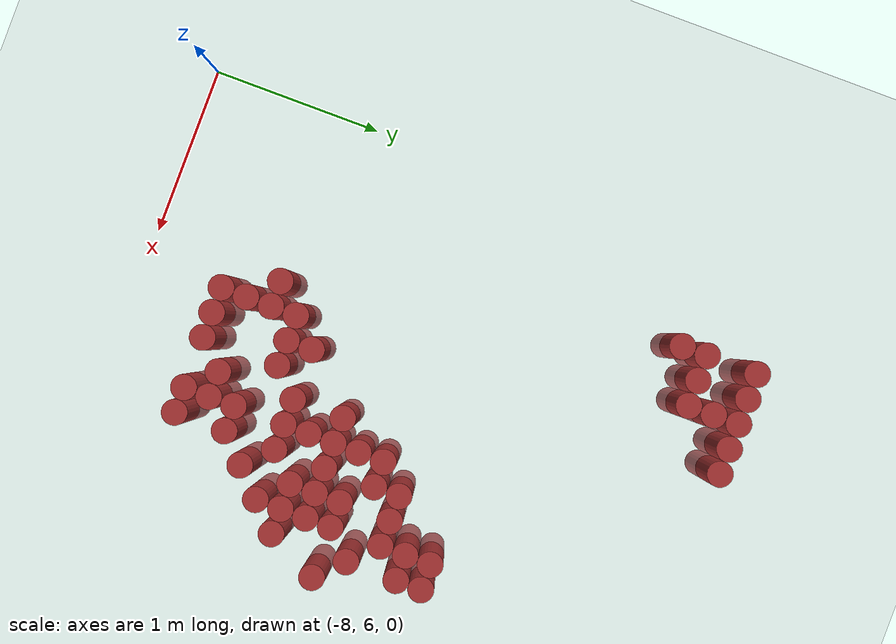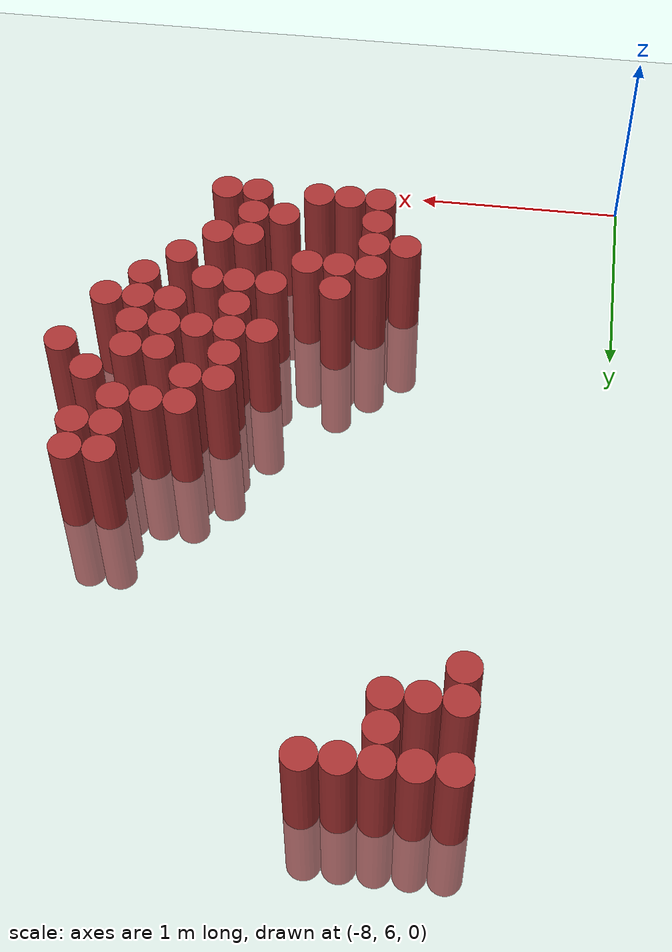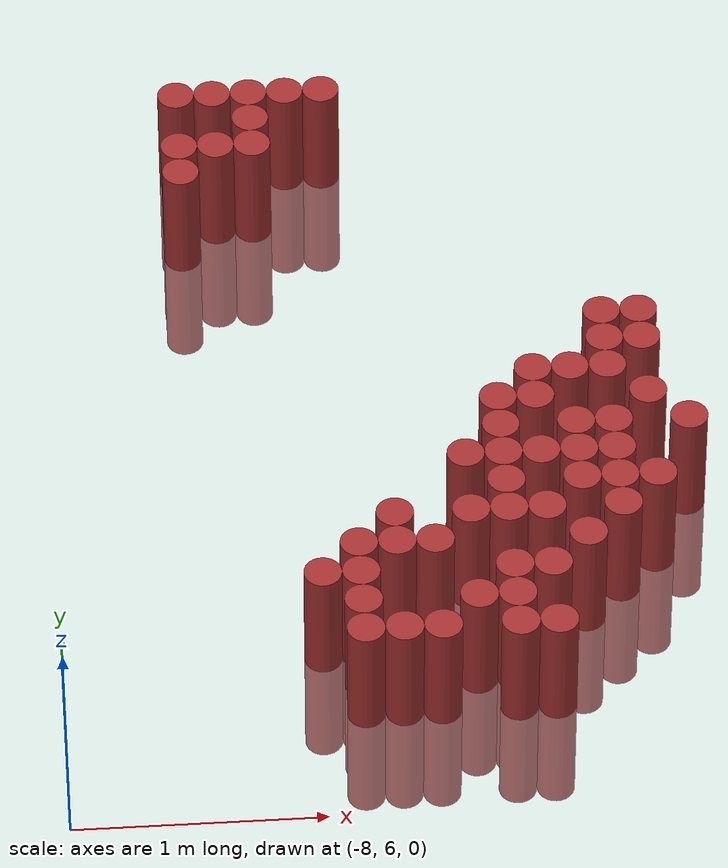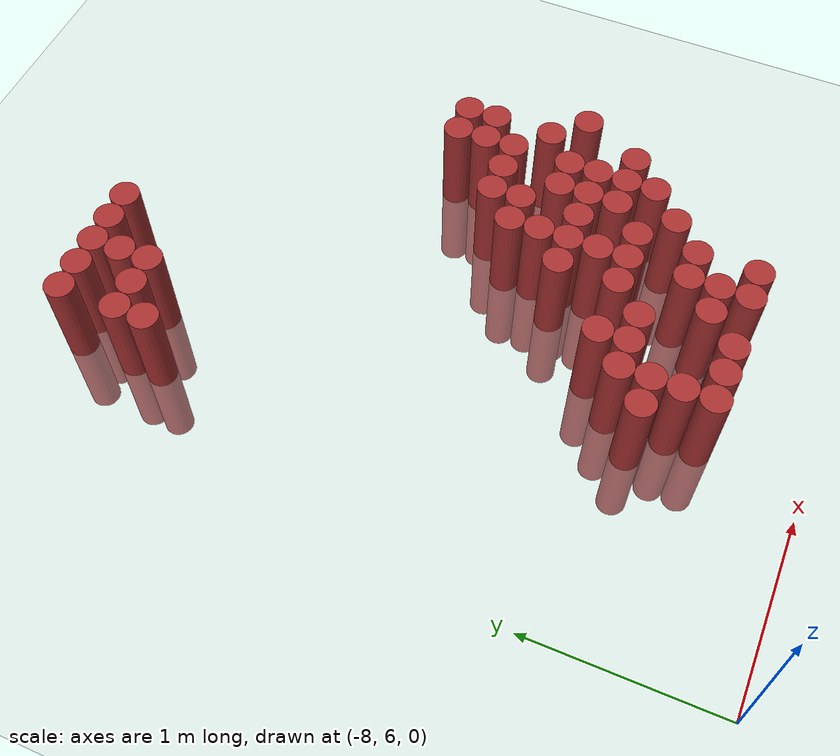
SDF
<sdf version="1.6">
 <world name="default">
  <model name="ground_plane">
   <static>1</static>
   <link name="link">
    <collision name="collision">
     <geometry><plane><normal>0 0 1</normal><size>100 100</size></plane></geometry>
     <surface><friction><ode><mu>100</mu><mu2>50</mu2></ode></friction></surface>
    </collision>
    <visual name="visual">
     <cast_shadows>0</cast_shadows>
     <geometry><plane><normal>0 0 1</normal><size>100 100</size></plane></geometry>
     <material>
      <script><uri>file://media/materials/scripts/gazebo.material</uri><name>Gazebo/Grey</name></script>
     </material>
    </visual>
   </link>
  </model>
  <model name="unit_cylinder_199">
   <static>1</static>
   <pose>-7.425000 9.075000 0.000000 0.000000 0.000000 0.000000</pose>
   <link name="link">
    <inertial>
     <mass>1</mass>
     <inertia><ixx>0.145833</ixx><ixy>0</ixy><ixz>0</ixz><iyy>0.145833</iyy><iyz>0</iyz><izz>0.125</izz></inertia>
    </inertial>
    <collision name="collision">
     <geometry><cylinder><radius>0.075000</radius><length>1</length></cylinder></geometry>
    </collision>
    <visual name="visual">
     <geometry><cylinder><radius>0.075000</radius><length>1</length></cylinder></geometry>
     <material>
      <ambient>0.648000 0.192000 0.192000 1</ambient>
      <diffuse>0.648000 0.192000 0.192000 1</diffuse>
     </material>
     <material>
      <script><name>Gazebo/Grey</name><uri>file://media/materials/scripts/gazebo.material</uri></script>
     </material>
    </visual>
   </link>
  </model>
  <model name="unit_cylinder_200">
   <static>1</static>
   <pose>-7.425000 9.225000 0.000000 0.000000 0.000000 0.000000</pose>
   <link name="link">
    <inertial>
     <mass>1</mass>
     <inertia><ixx>0.145833</ixx><ixy>0</ixy><ixz>0</ixz><iyy>0.145833</iyy><iyz>0</iyz><izz>0.125</izz></inertia>
    </inertial>
    <collision name="collision">
     <geometry><cylinder><radius>0.075000</radius><length>1</length></cylinder></geometry>
    </collision>
    <visual name="visual">
     <geometry><cylinder><radius>0.075000</radius><length>1</length></cylinder></geometry>
     <material>
      <ambient>0.648000 0.192000 0.192000 1</ambient>
      <diffuse>0.648000 0.192000 0.192000 1</diffuse>
     </material>
     <material>
      <script><name>Gazebo/Grey</name><uri>file://media/materials/scripts/gazebo.material</uri></script>
     </material>
    </visual>
   </link>
  </model>
  <model name="unit_cylinder_201">
   <static>1</static>
   <pose>-7.425000 9.525000 0.000000 0.000000 0.000000 0.000000</pose>
   <link name="link">
    <inertial>
     <mass>1</mass>
     <inertia><ixx>0.145833</ixx><ixy>0</ixy><ixz>0</ixz><iyy>0.145833</iyy><iyz>0</iyz><izz>0.125</izz></inertia>
    </inertial>
    <collision name="collision">
     <geometry><cylinder><radius>0.075000</radius><length>1</length></cylinder></geometry>
    </collision>
    <visual name="visual">
     <geometry><cylinder><radius>0.075000</radius><length>1</length></cylinder></geometry>
     <material>
      <ambient>0.648000 0.192000 0.192000 1</ambient>
      <diffuse>0.648000 0.192000 0.192000 1</diffuse>
     </material>
     <material>
      <script><name>Gazebo/Grey</name><uri>file://media/materials/scripts/gazebo.material</uri></script>
     </material>
    </visual>
   </link>
  </model>
  <model name="unit_cylinder_202">
   <static>1</static>
   <pose>-7.275000 9.225000 0.000000 0.000000 0.000000 0.000000</pose>
   <link name="link">
    <inertial>
     <mass>1</mass>
     <inertia><ixx>0.145833</ixx><ixy>0</ixy><ixz>0</ixz><iyy>0.145833</iyy><iyz>0</iyz><izz>0.125</izz></inertia>
    </inertial>
    <collision name="collision">
     <geometry><cylinder><radius>0.075000</radius><length>1</length></cylinder></geometry>
    </collision>
    <visual name="visual">
     <geometry><cylinder><radius>0.075000</radius><length>1</length></cylinder></geometry>
     <material>
      <ambient>0.648000 0.192000 0.192000 1</ambient>
      <diffuse>0.648000 0.192000 0.192000 1</diffuse>
     </material>
     <material>
      <script><name>Gazebo/Grey</name><uri>file://media/materials/scripts/gazebo.material</uri></script>
     </material>
    </visual>
   </link>
  </model>
  <model name="unit_cylinder_203">
   <static>1</static>
   <pose>-7.275000 9.525000 0.000000 0.000000 0.000000 0.000000</pose>
   <link name="link">
    <inertial>
     <mass>1</mass>
     <inertia><ixx>0.145833</ixx><ixy>0</ixy><ixz>0</ixz><iyy>0.145833</iyy><iyz>0</iyz><izz>0.125</izz></inertia>
    </inertial>
    <collision name="collision">
     <geometry><cylinder><radius>0.075000</radius><length>1</length></cylinder></geometry>
    </collision>
    <visual name="visual">
     <geometry><cylinder><radius>0.075000</radius><length>1</length></cylinder></geometry>
     <material>
      <ambient>0.648000 0.192000 0.192000 1</ambient>
      <diffuse>0.648000 0.192000 0.192000 1</diffuse>
     </material>
     <material>
      <script><name>Gazebo/Grey</name><uri>file://media/materials/scripts/gazebo.material</uri></script>
     </material>
    </visual>
   </link>
  </model>
  <model name="unit_cylinder_206">
   <static>1</static>
   <pose>-7.125000 9.225000 0.000000 0.000000 0.000000 0.000000</pose>
   <link name="link">
    <inertial>
     <mass>1</mass>
     <inertia><ixx>0.145833</ixx><ixy>0</ixy><ixz>0</ixz><iyy>0.145833</iyy><iyz>0</iyz><izz>0.125</izz></inertia>
    </inertial>
    <collision name="collision">
     <geometry><cylinder><radius>0.075000</radius><length>1</length></cylinder></geometry>
    </collision>
    <visual name="visual">
     <geometry><cylinder><radius>0.075000</radius><length>1</length></cylinder></geometry>
     <material>
      <ambient>0.648000 0.192000 0.192000 1</ambient>
      <diffuse>0.648000 0.192000 0.192000 1</diffuse>
     </material>
     <material>
      <script><name>Gazebo/Grey</name><uri>file://media/materials/scripts/gazebo.material</uri></script>
     </material>
    </visual>
   </link>
  </model>
  <model name="unit_cylinder_207">
   <static>1</static>
   <pose>-7.125000 9.375000 0.000000 0.000000 0.000000 0.000000</pose>
   <link name="link">
    <inertial>
     <mass>1</mass>
     <inertia><ixx>0.145833</ixx><ixy>0</ixy><ixz>0</ixz><iyy>0.145833</iyy><iyz>0</iyz><izz>0.125</izz></inertia>
    </inertial>
    <collision name="collision">
     <geometry><cylinder><radius>0.075000</radius><length>1</length></cylinder></geometry>
    </collision>
    <visual name="visual">
     <geometry><cylinder><radius>0.075000</radius><length>1</length></cylinder></geometry>
     <material>
      <ambient>0.648000 0.192000 0.192000 1</ambient>
      <diffuse>0.648000 0.192000 0.192000 1</diffuse>
     </material>
     <material>
      <script><name>Gazebo/Grey</name><uri>file://media/materials/scripts/gazebo.material</uri></script>
     </material>
    </visual>
   </link>
  </model>
  <model name="unit_cylinder_208">
   <static>1</static>
   <pose>-7.125000 9.525000 0.000000 0.000000 0.000000 0.000000</pose>
   <link name="link">
    <inertial>
     <mass>1</mass>
     <inertia><ixx>0.145833</ixx><ixy>0</ixy><ixz>0</ixz><iyy>0.145833</iyy><iyz>0</iyz><izz>0.125</izz></inertia>
    </inertial>
    <collision name="collision">
     <geometry><cylinder><radius>0.075000</radius><length>1</length></cylinder></geometry>
    </collision>
    <visual name="visual">
     <geometry><cylinder><radius>0.075000</radius><length>1</length></cylinder></geometry>
     <material>
      <ambient>0.648000 0.192000 0.192000 1</ambient>
      <diffuse>0.648000 0.192000 0.192000 1</diffuse>
     </material>
     <material>
      <script><name>Gazebo/Grey</name><uri>file://media/materials/scripts/gazebo.material</uri></script>
     </material>
    </visual>
   </link>
  </model>
  <model name="unit_cylinder_213">
   <static>1</static>
   <pose>-6.975000 6.825000 0.000000 0.000000 0.000000 0.000000</pose>
   <link name="link">
    <inertial>
     <mass>1</mass>
     <inertia><ixx>0.145833</ixx><ixy>0</ixy><ixz>0</ixz><iyy>0.145833</iyy><iyz>0</iyz><izz>0.125</izz></inertia>
    </inertial>
    <collision name="collision">
     <geometry><cylinder><radius>0.075000</radius><length>1</length></cylinder></geometry>
    </collision>
    <visual name="visual">
     <geometry><cylinder><radius>0.075000</radius><length>1</length></cylinder></geometry>
     <material>
      <ambient>0.648000 0.192000 0.192000 1</ambient>
      <diffuse>0.648000 0.192000 0.192000 1</diffuse>
     </material>
     <material>
      <script><name>Gazebo/Grey</name><uri>file://media/materials/scripts/gazebo.material</uri></script>
     </material>
    </visual>
   </link>
  </model>
  <model name="unit_cylinder_214">
   <static>1</static>
   <pose>-6.975000 9.525000 0.000000 0.000000 0.000000 0.000000</pose>
   <link name="link">
    <inertial>
     <mass>1</mass>
     <inertia><ixx>0.145833</ixx><ixy>0</ixy><ixz>0</ixz><iyy>0.145833</iyy><iyz>0</iyz><izz>0.125</izz></inertia>
    </inertial>
    <collision name="collision">
     <geometry><cylinder><radius>0.075000</radius><length>1</length></cylinder></geometry>
    </collision>
    <visual name="visual">
     <geometry><cylinder><radius>0.075000</radius><length>1</length></cylinder></geometry>
     <material>
      <ambient>0.648000 0.192000 0.192000 1</ambient>
      <diffuse>0.648000 0.192000 0.192000 1</diffuse>
     </material>
     <material>
      <script><name>Gazebo/Grey</name><uri>file://media/materials/scripts/gazebo.material</uri></script>
     </material>
    </visual>
   </link>
  </model>
  <model name="unit_cylinder_217">
   <static>1</static>
   <pose>-6.825000 6.525000 0.000000 0.000000 0.000000 0.000000</pose>
   <link name="link">
    <inertial>
     <mass>1</mass>
     <inertia><ixx>0.145833</ixx><ixy>0</ixy><ixz>0</ixz><iyy>0.145833</iyy><iyz>0</iyz><izz>0.125</izz></inertia>
    </inertial>
    <collision name="collision">
     <geometry><cylinder><radius>0.075000</radius><length>1</length></cylinder></geometry>
    </collision>
    <visual name="visual">
     <geometry><cylinder><radius>0.075000</radius><length>1</length></cylinder></geometry>
     <material>
      <ambient>0.648000 0.192000 0.192000 1</ambient>
      <diffuse>0.648000 0.192000 0.192000 1</diffuse>
     </material>
     <material>
      <script><name>Gazebo/Grey</name><uri>file://media/materials/scripts/gazebo.material</uri></script>
     </material>
    </visual>
   </link>
  </model>
  <model name="unit_cylinder_218">
   <static>1</static>
   <pose>-6.825000 6.675000 0.000000 0.000000 0.000000 0.000000</pose>
   <link name="link">
    <inertial>
     <mass>1</mass>
     <inertia><ixx>0.145833</ixx><ixy>0</ixy><ixz>0</ixz><iyy>0.145833</iyy><iyz>0</iyz><izz>0.125</izz></inertia>
    </inertial>
    <collision name="collision">
     <geometry><cylinder><radius>0.075000</radius><length>1</length></cylinder></geometry>
    </collision>
    <visual name="visual">
     <geometry><cylinder><radius>0.075000</radius><length>1</length></cylinder></geometry>
     <material>
      <ambient>0.648000 0.192000 0.192000 1</ambient>
      <diffuse>0.648000 0.192000 0.192000 1</diffuse>
     </material>
     <material>
      <script><name>Gazebo/Grey</name><uri>file://media/materials/scripts/gazebo.material</uri></script>
     </material>
    </visual>
   </link>
  </model>
  <model name="unit_cylinder_219">
   <static>1</static>
   <pose>-6.825000 6.825000 0.000000 0.000000 0.000000 0.000000</pose>
   <link name="link">
    <inertial>
     <mass>1</mass>
     <inertia><ixx>0.145833</ixx><ixy>0</ixy><ixz>0</ixz><iyy>0.145833</iyy><iyz>0</iyz><izz>0.125</izz></inertia>
    </inertial>
    <collision name="collision">
     <geometry><cylinder><radius>0.075000</radius><length>1</length></cylinder></geometry>
    </collision>
    <visual name="visual">
     <geometry><cylinder><radius>0.075000</radius><length>1</length></cylinder></geometry>
     <material>
      <ambient>0.648000 0.192000 0.192000 1</ambient>
      <diffuse>0.648000 0.192000 0.192000 1</diffuse>
     </material>
     <material>
      <script><name>Gazebo/Grey</name><uri>file://media/materials/scripts/gazebo.material</uri></script>
     </material>
    </visual>
   </link>
  </model>
  <model name="unit_cylinder_220">
   <static>1</static>
   <pose>-6.825000 6.975000 0.000000 0.000000 0.000000 0.000000</pose>
   <link name="link">
    <inertial>
     <mass>1</mass>
     <inertia><ixx>0.145833</ixx><ixy>0</ixy><ixz>0</ixz><iyy>0.145833</iyy><iyz>0</iyz><izz>0.125</izz></inertia>
    </inertial>
    <collision name="collision">
     <geometry><cylinder><radius>0.075000</radius><length>1</length></cylinder></geometry>
    </collision>
    <visual name="visual">
     <geometry><cylinder><radius>0.075000</radius><length>1</length></cylinder></geometry>
     <material>
      <ambient>0.648000 0.192000 0.192000 1</ambient>
      <diffuse>0.648000 0.192000 0.192000 1</diffuse>
     </material>
     <material>
      <script><name>Gazebo/Grey</name><uri>file://media/materials/scripts/gazebo.material</uri></script>
     </material>
    </visual>
   </link>
  </model>
  <model name="unit_cylinder_221">
   <static>1</static>
   <pose>-6.825000 9.525000 0.000000 0.000000 0.000000 0.000000</pose>
   <link name="link">
    <inertial>
     <mass>1</mass>
     <inertia><ixx>0.145833</ixx><ixy>0</ixy><ixz>0</ixz><iyy>0.145833</iyy><iyz>0</iyz><izz>0.125</izz></inertia>
    </inertial>
    <collision name="collision">
     <geometry><cylinder><radius>0.075000</radius><length>1</length></cylinder></geometry>
    </collision>
    <visual name="visual">
     <geometry><cylinder><radius>0.075000</radius><length>1</length></cylinder></geometry>
     <material>
      <ambient>0.648000 0.192000 0.192000 1</ambient>
      <diffuse>0.648000 0.192000 0.192000 1</diffuse>
     </material>
     <material>
      <script><name>Gazebo/Grey</name><uri>file://media/materials/scripts/gazebo.material</uri></script>
     </material>
    </visual>
   </link>
  </model>
  <model name="unit_cylinder_224">
   <static>1</static>
   <pose>-6.675000 6.525000 0.000000 0.000000 0.000000 0.000000</pose>
   <link name="link">
    <inertial>
     <mass>1</mass>
     <inertia><ixx>0.145833</ixx><ixy>0</ixy><ixz>0</ixz><iyy>0.145833</iyy><iyz>0</iyz><izz>0.125</izz></inertia>
    </inertial>
    <collision name="collision">
     <geometry><cylinder><radius>0.075000</radius><length>1</length></cylinder></geometry>
    </collision>
    <visual name="visual">
     <geometry><cylinder><radius>0.075000</radius><length>1</length></cylinder></geometry>
     <material>
      <ambient>0.648000 0.192000 0.192000 1</ambient>
      <diffuse>0.648000 0.192000 0.192000 1</diffuse>
     </material>
     <material>
      <script><name>Gazebo/Grey</name><uri>file://media/materials/scripts/gazebo.material</uri></script>
     </material>
    </visual>
   </link>
  </model>
  <model name="unit_cylinder_225">
   <static>1</static>
   <pose>-6.675000 6.975000 0.000000 0.000000 0.000000 0.000000</pose>
   <link name="link">
    <inertial>
     <mass>1</mass>
     <inertia><ixx>0.145833</ixx><ixy>0</ixy><ixz>0</ixz><iyy>0.145833</iyy><iyz>0</iyz><izz>0.125</izz></inertia>
    </inertial>
    <collision name="collision">
     <geometry><cylinder><radius>0.075000</radius><length>1</length></cylinder></geometry>
    </collision>
    <visual name="visual">
     <geometry><cylinder><radius>0.075000</radius><length>1</length></cylinder></geometry>
     <material>
      <ambient>0.648000 0.192000 0.192000 1</ambient>
      <diffuse>0.648000 0.192000 0.192000 1</diffuse>
     </material>
     <material>
      <script><name>Gazebo/Grey</name><uri>file://media/materials/scripts/gazebo.material</uri></script>
     </material>
    </visual>
   </link>
  </model>
  <model name="unit_cylinder_226">
   <static>1</static>
   <pose>-6.675000 7.125000 0.000000 0.000000 0.000000 0.000000</pose>
   <link name="link">
    <inertial>
     <mass>1</mass>
     <inertia><ixx>0.145833</ixx><ixy>0</ixy><ixz>0</ixz><iyy>0.145833</iyy><iyz>0</iyz><izz>0.125</izz></inertia>
    </inertial>
    <collision name="collision">
     <geometry><cylinder><radius>0.075000</radius><length>1</length></cylinder></geometry>
    </collision>
    <visual name="visual">
     <geometry><cylinder><radius>0.075000</radius><length>1</length></cylinder></geometry>
     <material>
      <ambient>0.648000 0.192000 0.192000 1</ambient>
      <diffuse>0.648000 0.192000 0.192000 1</diffuse>
     </material>
     <material>
      <script><name>Gazebo/Grey</name><uri>file://media/materials/scripts/gazebo.material</uri></script>
     </material>
    </visual>
   </link>
  </model>
  <model name="unit_cylinder_230">
   <static>1</static>
   <pose>-6.525000 6.525000 0.000000 0.000000 0.000000 0.000000</pose>
   <link name="link">
    <inertial>
     <mass>1</mass>
     <inertia><ixx>0.145833</ixx><ixy>0</ixy><ixz>0</ixz><iyy>0.145833</iyy><iyz>0</iyz><izz>0.125</izz></inertia>
    </inertial>
    <collision name="collision">
     <geometry><cylinder><radius>0.075000</radius><length>1</length></cylinder></geometry>
    </collision>
    <visual name="visual">
     <geometry><cylinder><radius>0.075000</radius><length>1</length></cylinder></geometry>
     <material>
      <ambient>0.648000 0.192000 0.192000 1</ambient>
      <diffuse>0.648000 0.192000 0.192000 1</diffuse>
     </material>
     <material>
      <script><name>Gazebo/Grey</name><uri>file://media/materials/scripts/gazebo.material</uri></script>
     </material>
    </visual>
   </link>
  </model>
  <model name="unit_cylinder_231">
   <static>1</static>
   <pose>-6.525000 6.975000 0.000000 0.000000 0.000000 0.000000</pose>
   <link name="link">
    <inertial>
     <mass>1</mass>
     <inertia><ixx>0.145833</ixx><ixy>0</ixy><ixz>0</ixz><iyy>0.145833</iyy><iyz>0</iyz><izz>0.125</izz></inertia>
    </inertial>
    <collision name="collision">
     <geometry><cylinder><radius>0.075000</radius><length>1</length></cylinder></geometry>
    </collision>
    <visual name="visual">
     <geometry><cylinder><radius>0.075000</radius><length>1</length></cylinder></geometry>
     <material>
      <ambient>0.648000 0.192000 0.192000 1</ambient>
      <diffuse>0.648000 0.192000 0.192000 1</diffuse>
     </material>
     <material>
      <script><name>Gazebo/Grey</name><uri>file://media/materials/scripts/gazebo.material</uri></script>
     </material>
    </visual>
   </link>
  </model>
  <model name="unit_cylinder_235">
   <static>1</static>
   <pose>-6.375000 6.675000 0.000000 0.000000 0.000000 0.000000</pose>
   <link name="link">
    <inertial>
     <mass>1</mass>
     <inertia><ixx>0.145833</ixx><ixy>0</ixy><ixz>0</ixz><iyy>0.145833</iyy><iyz>0</iyz><izz>0.125</izz></inertia>
    </inertial>
    <collision name="collision">
     <geometry><cylinder><radius>0.075000</radius><length>1</length></cylinder></geometry>
    </collision>
    <visual name="visual">
     <geometry><cylinder><radius>0.075000</radius><length>1</length></cylinder></geometry>
     <material>
      <ambient>0.648000 0.192000 0.192000 1</ambient>
      <diffuse>0.648000 0.192000 0.192000 1</diffuse>
     </material>
     <material>
      <script><name>Gazebo/Grey</name><uri>file://media/materials/scripts/gazebo.material</uri></script>
     </material>
    </visual>
   </link>
  </model>
  <model name="unit_cylinder_236">
   <static>1</static>
   <pose>-6.375000 7.125000 0.000000 0.000000 0.000000 0.000000</pose>
   <link name="link">
    <inertial>
     <mass>1</mass>
     <inertia><ixx>0.145833</ixx><ixy>0</ixy><ixz>0</ixz><iyy>0.145833</iyy><iyz>0</iyz><izz>0.125</izz></inertia>
    </inertial>
    <collision name="collision">
     <geometry><cylinder><radius>0.075000</radius><length>1</length></cylinder></geometry>
    </collision>
    <visual name="visual">
     <geometry><cylinder><radius>0.075000</radius><length>1</length></cylinder></geometry>
     <material>
      <ambient>0.648000 0.192000 0.192000 1</ambient>
      <diffuse>0.648000 0.192000 0.192000 1</diffuse>
     </material>
     <material>
      <script><name>Gazebo/Grey</name><uri>file://media/materials/scripts/gazebo.material</uri></script>
     </material>
    </visual>
   </link>
  </model>
  <model name="unit_cylinder_237">
   <static>1</static>
   <pose>-6.375000 7.425000 0.000000 0.000000 0.000000 0.000000</pose>
   <link name="link">
    <inertial>
     <mass>1</mass>
     <inertia><ixx>0.145833</ixx><ixy>0</ixy><ixz>0</ixz><iyy>0.145833</iyy><iyz>0</iyz><izz>0.125</izz></inertia>
    </inertial>
    <collision name="collision">
     <geometry><cylinder><radius>0.075000</radius><length>1</length></cylinder></geometry>
    </collision>
    <visual name="visual">
     <geometry><cylinder><radius>0.075000</radius><length>1</length></cylinder></geometry>
     <material>
      <ambient>0.648000 0.192000 0.192000 1</ambient>
      <diffuse>0.648000 0.192000 0.192000 1</diffuse>
     </material>
     <material>
      <script><name>Gazebo/Grey</name><uri>file://media/materials/scripts/gazebo.material</uri></script>
     </material>
    </visual>
   </link>
  </model>
  <model name="unit_cylinder_239">
   <static>1</static>
   <pose>-6.225000 6.525000 0.000000 0.000000 0.000000 0.000000</pose>
   <link name="link">
    <inertial>
     <mass>1</mass>
     <inertia><ixx>0.145833</ixx><ixy>0</ixy><ixz>0</ixz><iyy>0.145833</iyy><iyz>0</iyz><izz>0.125</izz></inertia>
    </inertial>
    <collision name="collision">
     <geometry><cylinder><radius>0.075000</radius><length>1</length></cylinder></geometry>
    </collision>
    <visual name="visual">
     <geometry><cylinder><radius>0.075000</radius><length>1</length></cylinder></geometry>
     <material>
      <ambient>0.648000 0.192000 0.192000 1</ambient>
      <diffuse>0.648000 0.192000 0.192000 1</diffuse>
     </material>
     <material>
      <script><name>Gazebo/Grey</name><uri>file://media/materials/scripts/gazebo.material</uri></script>
     </material>
    </visual>
   </link>
  </model>
  <model name="unit_cylinder_240">
   <static>1</static>
   <pose>-6.225000 6.675000 0.000000 0.000000 0.000000 0.000000</pose>
   <link name="link">
    <inertial>
     <mass>1</mass>
     <inertia><ixx>0.145833</ixx><ixy>0</ixy><ixz>0</ixz><iyy>0.145833</iyy><iyz>0</iyz><izz>0.125</izz></inertia>
    </inertial>
    <collision name="collision">
     <geometry><cylinder><radius>0.075000</radius><length>1</length></cylinder></geometry>
    </collision>
    <visual name="visual">
     <geometry><cylinder><radius>0.075000</radius><length>1</length></cylinder></geometry>
     <material>
      <ambient>0.648000 0.192000 0.192000 1</ambient>
      <diffuse>0.648000 0.192000 0.192000 1</diffuse>
     </material>
     <material>
      <script><name>Gazebo/Grey</name><uri>file://media/materials/scripts/gazebo.material</uri></script>
     </material>
    </visual>
   </link>
  </model>
  <model name="unit_cylinder_241">
   <static>1</static>
   <pose>-6.225000 6.825000 0.000000 0.000000 0.000000 0.000000</pose>
   <link name="link">
    <inertial>
     <mass>1</mass>
     <inertia><ixx>0.145833</ixx><ixy>0</ixy><ixz>0</ixz><iyy>0.145833</iyy><iyz>0</iyz><izz>0.125</izz></inertia>
    </inertial>
    <collision name="collision">
     <geometry><cylinder><radius>0.075000</radius><length>1</length></cylinder></geometry>
    </collision>
    <visual name="visual">
     <geometry><cylinder><radius>0.075000</radius><length>1</length></cylinder></geometry>
     <material>
      <ambient>0.648000 0.192000 0.192000 1</ambient>
      <diffuse>0.648000 0.192000 0.192000 1</diffuse>
     </material>
     <material>
      <script><name>Gazebo/Grey</name><uri>file://media/materials/scripts/gazebo.material</uri></script>
     </material>
    </visual>
   </link>
  </model>
  <model name="unit_cylinder_242">
   <static>1</static>
   <pose>-6.225000 7.125000 0.000000 0.000000 0.000000 0.000000</pose>
   <link name="link">
    <inertial>
     <mass>1</mass>
     <inertia><ixx>0.145833</ixx><ixy>0</ixy><ixz>0</ixz><iyy>0.145833</iyy><iyz>0</iyz><izz>0.125</izz></inertia>
    </inertial>
    <collision name="collision">
     <geometry><cylinder><radius>0.075000</radius><length>1</length></cylinder></geometry>
    </collision>
    <visual name="visual">
     <geometry><cylinder><radius>0.075000</radius><length>1</length></cylinder></geometry>
     <material>
      <ambient>0.648000 0.192000 0.192000 1</ambient>
      <diffuse>0.648000 0.192000 0.192000 1</diffuse>
     </material>
     <material>
      <script><name>Gazebo/Grey</name><uri>file://media/materials/scripts/gazebo.material</uri></script>
     </material>
    </visual>
   </link>
  </model>
  <model name="unit_cylinder_243">
   <static>1</static>
   <pose>-6.225000 7.275000 0.000000 0.000000 0.000000 0.000000</pose>
   <link name="link">
    <inertial>
     <mass>1</mass>
     <inertia><ixx>0.145833</ixx><ixy>0</ixy><ixz>0</ixz><iyy>0.145833</iyy><iyz>0</iyz><izz>0.125</izz></inertia>
    </inertial>
    <collision name="collision">
     <geometry><cylinder><radius>0.075000</radius><length>1</length></cylinder></geometry>
    </collision>
    <visual name="visual">
     <geometry><cylinder><radius>0.075000</radius><length>1</length></cylinder></geometry>
     <material>
      <ambient>0.648000 0.192000 0.192000 1</ambient>
      <diffuse>0.648000 0.192000 0.192000 1</diffuse>
     </material>
     <material>
      <script><name>Gazebo/Grey</name><uri>file://media/materials/scripts/gazebo.material</uri></script>
     </material>
    </visual>
   </link>
  </model>
  <model name="unit_cylinder_244">
   <static>1</static>
   <pose>-6.225000 7.425000 0.000000 0.000000 0.000000 0.000000</pose>
   <link name="link">
    <inertial>
     <mass>1</mass>
     <inertia><ixx>0.145833</ixx><ixy>0</ixy><ixz>0</ixz><iyy>0.145833</iyy><iyz>0</iyz><izz>0.125</izz></inertia>
    </inertial>
    <collision name="collision">
     <geometry><cylinder><radius>0.075000</radius><length>1</length></cylinder></geometry>
    </collision>
    <visual name="visual">
     <geometry><cylinder><radius>0.075000</radius><length>1</length></cylinder></geometry>
     <material>
      <ambient>0.648000 0.192000 0.192000 1</ambient>
      <diffuse>0.648000 0.192000 0.192000 1</diffuse>
     </material>
     <material>
      <script><name>Gazebo/Grey</name><uri>file://media/materials/scripts/gazebo.material</uri></script>
     </material>
    </visual>
   </link>
  </model>
  <model name="unit_cylinder_245">
   <static>1</static>
   <pose>-6.225000 7.575000 0.000000 0.000000 0.000000 0.000000</pose>
   <link name="link">
    <inertial>
     <mass>1</mass>
     <inertia><ixx>0.145833</ixx><ixy>0</ixy><ixz>0</ixz><iyy>0.145833</iyy><iyz>0</iyz><izz>0.125</izz></inertia>
    </inertial>
    <collision name="collision">
     <geometry><cylinder><radius>0.075000</radius><length>1</length></cylinder></geometry>
    </collision>
    <visual name="visual">
     <geometry><cylinder><radius>0.075000</radius><length>1</length></cylinder></geometry>
     <material>
      <ambient>0.648000 0.192000 0.192000 1</ambient>
      <diffuse>0.648000 0.192000 0.192000 1</diffuse>
     </material>
     <material>
      <script><name>Gazebo/Grey</name><uri>file://media/materials/scripts/gazebo.material</uri></script>
     </material>
    </visual>
   </link>
  </model>
  <model name="unit_cylinder_246">
   <static>1</static>
   <pose>-6.225000 7.725000 0.000000 0.000000 0.000000 0.000000</pose>
   <link name="link">
    <inertial>
     <mass>1</mass>
     <inertia><ixx>0.145833</ixx><ixy>0</ixy><ixz>0</ixz><iyy>0.145833</iyy><iyz>0</iyz><izz>0.125</izz></inertia>
    </inertial>
    <collision name="collision">
     <geometry><cylinder><radius>0.075000</radius><length>1</length></cylinder></geometry>
    </collision>
    <visual name="visual">
     <geometry><cylinder><radius>0.075000</radius><length>1</length></cylinder></geometry>
     <material>
      <ambient>0.648000 0.192000 0.192000 1</ambient>
      <diffuse>0.648000 0.192000 0.192000 1</diffuse>
     </material>
     <material>
      <script><name>Gazebo/Grey</name><uri>file://media/materials/scripts/gazebo.material</uri></script>
     </material>
    </visual>
   </link>
  </model>
  <model name="unit_cylinder_247">
   <static>1</static>
   <pose>-6.075000 6.525000 0.000000 0.000000 0.000000 0.000000</pose>
   <link name="link">
    <inertial>
     <mass>1</mass>
     <inertia><ixx>0.145833</ixx><ixy>0</ixy><ixz>0</ixz><iyy>0.145833</iyy><iyz>0</iyz><izz>0.125</izz></inertia>
    </inertial>
    <collision name="collision">
     <geometry><cylinder><radius>0.075000</radius><length>1</length></cylinder></geometry>
    </collision>
    <visual name="visual">
     <geometry><cylinder><radius>0.075000</radius><length>1</length></cylinder></geometry>
     <material>
      <ambient>0.648000 0.192000 0.192000 1</ambient>
      <diffuse>0.648000 0.192000 0.192000 1</diffuse>
     </material>
     <material>
      <script><name>Gazebo/Grey</name><uri>file://media/materials/scripts/gazebo.material</uri></script>
     </material>
    </visual>
   </link>
  </model>
  <model name="unit_cylinder_248">
   <static>1</static>
   <pose>-6.075000 6.825000 0.000000 0.000000 0.000000 0.000000</pose>
   <link name="link">
    <inertial>
     <mass>1</mass>
     <inertia><ixx>0.145833</ixx><ixy>0</ixy><ixz>0</ixz><iyy>0.145833</iyy><iyz>0</iyz><izz>0.125</izz></inertia>
    </inertial>
    <collision name="collision">
     <geometry><cylinder><radius>0.075000</radius><length>1</length></cylinder></geometry>
    </collision>
    <visual name="visual">
     <geometry><cylinder><radius>0.075000</radius><length>1</length></cylinder></geometry>
     <material>
      <ambient>0.648000 0.192000 0.192000 1</ambient>
      <diffuse>0.648000 0.192000 0.192000 1</diffuse>
     </material>
     <material>
      <script><name>Gazebo/Grey</name><uri>file://media/materials/scripts/gazebo.material</uri></script>
     </material>
    </visual>
   </link>
  </model>
  <model name="unit_cylinder_249">
   <static>1</static>
   <pose>-6.075000 7.125000 0.000000 0.000000 0.000000 0.000000</pose>
   <link name="link">
    <inertial>
     <mass>1</mass>
     <inertia><ixx>0.145833</ixx><ixy>0</ixy><ixz>0</ixz><iyy>0.145833</iyy><iyz>0</iyz><izz>0.125</izz></inertia>
    </inertial>
    <collision name="collision">
     <geometry><cylinder><radius>0.075000</radius><length>1</length></cylinder></geometry>
    </collision>
    <visual name="visual">
     <geometry><cylinder><radius>0.075000</radius><length>1</length></cylinder></geometry>
     <material>
      <ambient>0.648000 0.192000 0.192000 1</ambient>
      <diffuse>0.648000 0.192000 0.192000 1</diffuse>
     </material>
     <material>
      <script><name>Gazebo/Grey</name><uri>file://media/materials/scripts/gazebo.material</uri></script>
     </material>
    </visual>
   </link>
  </model>
  <model name="unit_cylinder_250">
   <static>1</static>
   <pose>-6.075000 7.425000 0.000000 0.000000 0.000000 0.000000</pose>
   <link name="link">
    <inertial>
     <mass>1</mass>
     <inertia><ixx>0.145833</ixx><ixy>0</ixy><ixz>0</ixz><iyy>0.145833</iyy><iyz>0</iyz><izz>0.125</izz></inertia>
    </inertial>
    <collision name="collision">
     <geometry><cylinder><radius>0.075000</radius><length>1</length></cylinder></geometry>
    </collision>
    <visual name="visual">
     <geometry><cylinder><radius>0.075000</radius><length>1</length></cylinder></geometry>
     <material>
      <ambient>0.648000 0.192000 0.192000 1</ambient>
      <diffuse>0.648000 0.192000 0.192000 1</diffuse>
     </material>
     <material>
      <script><name>Gazebo/Grey</name><uri>file://media/materials/scripts/gazebo.material</uri></script>
     </material>
    </visual>
   </link>
  </model>
  <model name="unit_cylinder_251">
   <static>1</static>
   <pose>-6.075000 7.725000 0.000000 0.000000 0.000000 0.000000</pose>
   <link name="link">
    <inertial>
     <mass>1</mass>
     <inertia><ixx>0.145833</ixx><ixy>0</ixy><ixz>0</ixz><iyy>0.145833</iyy><iyz>0</iyz><izz>0.125</izz></inertia>
    </inertial>
    <collision name="collision">
     <geometry><cylinder><radius>0.075000</radius><length>1</length></cylinder></geometry>
    </collision>
    <visual name="visual">
     <geometry><cylinder><radius>0.075000</radius><length>1</length></cylinder></geometry>
     <material>
      <ambient>0.648000 0.192000 0.192000 1</ambient>
      <diffuse>0.648000 0.192000 0.192000 1</diffuse>
     </material>
     <material>
      <script><name>Gazebo/Grey</name><uri>file://media/materials/scripts/gazebo.material</uri></script>
     </material>
    </visual>
   </link>
  </model>
  <model name="unit_cylinder_252">
   <static>1</static>
   <pose>-6.075000 7.875000 0.000000 0.000000 0.000000 0.000000</pose>
   <link name="link">
    <inertial>
     <mass>1</mass>
     <inertia><ixx>0.145833</ixx><ixy>0</ixy><ixz>0</ixz><iyy>0.145833</iyy><iyz>0</iyz><izz>0.125</izz></inertia>
    </inertial>
    <collision name="collision">
     <geometry><cylinder><radius>0.075000</radius><length>1</length></cylinder></geometry>
    </collision>
    <visual name="visual">
     <geometry><cylinder><radius>0.075000</radius><length>1</length></cylinder></geometry>
     <material>
      <ambient>0.648000 0.192000 0.192000 1</ambient>
      <diffuse>0.648000 0.192000 0.192000 1</diffuse>
     </material>
     <material>
      <script><name>Gazebo/Grey</name><uri>file://media/materials/scripts/gazebo.material</uri></script>
     </material>
    </visual>
   </link>
  </model>
  <model name="unit_cylinder_253">
   <static>1</static>
   <pose>-5.925000 6.975000 0.000000 0.000000 0.000000 0.000000</pose>
   <link name="link">
    <inertial>
     <mass>1</mass>
     <inertia><ixx>0.145833</ixx><ixy>0</ixy><ixz>0</ixz><iyy>0.145833</iyy><iyz>0</iyz><izz>0.125</izz></inertia>
    </inertial>
    <collision name="collision">
     <geometry><cylinder><radius>0.075000</radius><length>1</length></cylinder></geometry>
    </collision>
    <visual name="visual">
     <geometry><cylinder><radius>0.075000</radius><length>1</length></cylinder></geometry>
     <material>
      <ambient>0.648000 0.192000 0.192000 1</ambient>
      <diffuse>0.648000 0.192000 0.192000 1</diffuse>
     </material>
     <material>
      <script><name>Gazebo/Grey</name><uri>file://media/materials/scripts/gazebo.material</uri></script>
     </material>
    </visual>
   </link>
  </model>
  <model name="unit_cylinder_254">
   <static>1</static>
   <pose>-5.925000 7.275000 0.000000 0.000000 0.000000 0.000000</pose>
   <link name="link">
    <inertial>
     <mass>1</mass>
     <inertia><ixx>0.145833</ixx><ixy>0</ixy><ixz>0</ixz><iyy>0.145833</iyy><iyz>0</iyz><izz>0.125</izz></inertia>
    </inertial>
    <collision name="collision">
     <geometry><cylinder><radius>0.075000</radius><length>1</length></cylinder></geometry>
    </collision>
    <visual name="visual">
     <geometry><cylinder><radius>0.075000</radius><length>1</length></cylinder></geometry>
     <material>
      <ambient>0.648000 0.192000 0.192000 1</ambient>
      <diffuse>0.648000 0.192000 0.192000 1</diffuse>
     </material>
     <material>
      <script><name>Gazebo/Grey</name><uri>file://media/materials/scripts/gazebo.material</uri></script>
     </material>
    </visual>
   </link>
  </model>
  <model name="unit_cylinder_255">
   <static>1</static>
   <pose>-5.925000 7.425000 0.000000 0.000000 0.000000 0.000000</pose>
   <link name="link">
    <inertial>
     <mass>1</mass>
     <inertia><ixx>0.145833</ixx><ixy>0</ixy><ixz>0</ixz><iyy>0.145833</iyy><iyz>0</iyz><izz>0.125</izz></inertia>
    </inertial>
    <collision name="collision">
     <geometry><cylinder><radius>0.075000</radius><length>1</length></cylinder></geometry>
    </collision>
    <visual name="visual">
     <geometry><cylinder><radius>0.075000</radius><length>1</length></cylinder></geometry>
     <material>
      <ambient>0.648000 0.192000 0.192000 1</ambient>
      <diffuse>0.648000 0.192000 0.192000 1</diffuse>
     </material>
     <material>
      <script><name>Gazebo/Grey</name><uri>file://media/materials/scripts/gazebo.material</uri></script>
     </material>
    </visual>
   </link>
  </model>
  <model name="unit_cylinder_256">
   <static>1</static>
   <pose>-5.925000 7.575000 0.000000 0.000000 0.000000 0.000000</pose>
   <link name="link">
    <inertial>
     <mass>1</mass>
     <inertia><ixx>0.145833</ixx><ixy>0</ixy><ixz>0</ixz><iyy>0.145833</iyy><iyz>0</iyz><izz>0.125</izz></inertia>
    </inertial>
    <collision name="collision">
     <geometry><cylinder><radius>0.075000</radius><length>1</length></cylinder></geometry>
    </collision>
    <visual name="visual">
     <geometry><cylinder><radius>0.075000</radius><length>1</length></cylinder></geometry>
     <material>
      <ambient>0.648000 0.192000 0.192000 1</ambient>
      <diffuse>0.648000 0.192000 0.192000 1</diffuse>
     </material>
     <material>
      <script><name>Gazebo/Grey</name><uri>file://media/materials/scripts/gazebo.material</uri></script>
     </material>
    </visual>
   </link>
  </model>
  <model name="unit_cylinder_257">
   <static>1</static>
   <pose>-5.925000 7.875000 0.000000 0.000000 0.000000 0.000000</pose>
   <link name="link">
    <inertial>
     <mass>1</mass>
     <inertia><ixx>0.145833</ixx><ixy>0</ixy><ixz>0</ixz><iyy>0.145833</iyy><iyz>0</iyz><izz>0.125</izz></inertia>
    </inertial>
    <collision name="collision">
     <geometry><cylinder><radius>0.075000</radius><length>1</length></cylinder></geometry>
    </collision>
    <visual name="visual">
     <geometry><cylinder><radius>0.075000</radius><length>1</length></cylinder></geometry>
     <material>
      <ambient>0.648000 0.192000 0.192000 1</ambient>
      <diffuse>0.648000 0.192000 0.192000 1</diffuse>
     </material>
     <material>
      <script><name>Gazebo/Grey</name><uri>file://media/materials/scripts/gazebo.material</uri></script>
     </material>
    </visual>
   </link>
  </model>
  <model name="unit_cylinder_258">
   <static>1</static>
   <pose>-5.775000 7.125000 0.000000 0.000000 0.000000 0.000000</pose>
   <link name="link">
    <inertial>
     <mass>1</mass>
     <inertia><ixx>0.145833</ixx><ixy>0</ixy><ixz>0</ixz><iyy>0.145833</iyy><iyz>0</iyz><izz>0.125</izz></inertia>
    </inertial>
    <collision name="collision">
     <geometry><cylinder><radius>0.075000</radius><length>1</length></cylinder></geometry>
    </collision>
    <visual name="visual">
     <geometry><cylinder><radius>0.075000</radius><length>1</length></cylinder></geometry>
     <material>
      <ambient>0.648000 0.192000 0.192000 1</ambient>
      <diffuse>0.648000 0.192000 0.192000 1</diffuse>
     </material>
     <material>
      <script><name>Gazebo/Grey</name><uri>file://media/materials/scripts/gazebo.material</uri></script>
     </material>
    </visual>
   </link>
  </model>
  <model name="unit_cylinder_259">
   <static>1</static>
   <pose>-5.775000 7.275000 0.000000 0.000000 0.000000 0.000000</pose>
   <link name="link">
    <inertial>
     <mass>1</mass>
     <inertia><ixx>0.145833</ixx><ixy>0</ixy><ixz>0</ixz><iyy>0.145833</iyy><iyz>0</iyz><izz>0.125</izz></inertia>
    </inertial>
    <collision name="collision">
     <geometry><cylinder><radius>0.075000</radius><length>1</length></cylinder></geometry>
    </collision>
    <visual name="visual">
     <geometry><cylinder><radius>0.075000</radius><length>1</length></cylinder></geometry>
     <material>
      <ambient>0.648000 0.192000 0.192000 1</ambient>
      <diffuse>0.648000 0.192000 0.192000 1</diffuse>
     </material>
     <material>
      <script><name>Gazebo/Grey</name><uri>file://media/materials/scripts/gazebo.material</uri></script>
     </material>
    </visual>
   </link>
  </model>
  <model name="unit_cylinder_260">
   <static>1</static>
   <pose>-5.775000 7.425000 0.000000 0.000000 0.000000 0.000000</pose>
   <link name="link">
    <inertial>
     <mass>1</mass>
     <inertia><ixx>0.145833</ixx><ixy>0</ixy><ixz>0</ixz><iyy>0.145833</iyy><iyz>0</iyz><izz>0.125</izz></inertia>
    </inertial>
    <collision name="collision">
     <geometry><cylinder><radius>0.075000</radius><length>1</length></cylinder></geometry>
    </collision>
    <visual name="visual">
     <geometry><cylinder><radius>0.075000</radius><length>1</length></cylinder></geometry>
     <material>
      <ambient>0.648000 0.192000 0.192000 1</ambient>
      <diffuse>0.648000 0.192000 0.192000 1</diffuse>
     </material>
     <material>
      <script><name>Gazebo/Grey</name><uri>file://media/materials/scripts/gazebo.material</uri></script>
     </material>
    </visual>
   </link>
  </model>
  <model name="unit_cylinder_261">
   <static>1</static>
   <pose>-5.775000 7.575000 0.000000 0.000000 0.000000 0.000000</pose>
   <link name="link">
    <inertial>
     <mass>1</mass>
     <inertia><ixx>0.145833</ixx><ixy>0</ixy><ixz>0</ixz><iyy>0.145833</iyy><iyz>0</iyz><izz>0.125</izz></inertia>
    </inertial>
    <collision name="collision">
     <geometry><cylinder><radius>0.075000</radius><length>1</length></cylinder></geometry>
    </collision>
    <visual name="visual">
     <geometry><cylinder><radius>0.075000</radius><length>1</length></cylinder></geometry>
     <material>
      <ambient>0.648000 0.192000 0.192000 1</ambient>
      <diffuse>0.648000 0.192000 0.192000 1</diffuse>
     </material>
     <material>
      <script><name>Gazebo/Grey</name><uri>file://media/materials/scripts/gazebo.material</uri></script>
     </material>
    </visual>
   </link>
  </model>
  <model name="unit_cylinder_262">
   <static>1</static>
   <pose>-5.775000 7.875000 0.000000 0.000000 0.000000 0.000000</pose>
   <link name="link">
    <inertial>
     <mass>1</mass>
     <inertia><ixx>0.145833</ixx><ixy>0</ixy><ixz>0</ixz><iyy>0.145833</iyy><iyz>0</iyz><izz>0.125</izz></inertia>
    </inertial>
    <collision name="collision">
     <geometry><cylinder><radius>0.075000</radius><length>1</length></cylinder></geometry>
    </collision>
    <visual name="visual">
     <geometry><cylinder><radius>0.075000</radius><length>1</length></cylinder></geometry>
     <material>
      <ambient>0.648000 0.192000 0.192000 1</ambient>
      <diffuse>0.648000 0.192000 0.192000 1</diffuse>
     </material>
     <material>
      <script><name>Gazebo/Grey</name><uri>file://media/materials/scripts/gazebo.material</uri></script>
     </material>
    </visual>
   </link>
  </model>
  <model name="unit_cylinder_263">
   <static>1</static>
   <pose>-5.775000 8.025000 0.000000 0.000000 0.000000 0.000000</pose>
   <link name="link">
    <inertial>
     <mass>1</mass>
     <inertia><ixx>0.145833</ixx><ixy>0</ixy><ixz>0</ixz><iyy>0.145833</iyy><iyz>0</iyz><izz>0.125</izz></inertia>
    </inertial>
    <collision name="collision">
     <geometry><cylinder><radius>0.075000</radius><length>1</length></cylinder></geometry>
    </collision>
    <visual name="visual">
     <geometry><cylinder><radius>0.075000</radius><length>1</length></cylinder></geometry>
     <material>
      <ambient>0.648000 0.192000 0.192000 1</ambient>
      <diffuse>0.648000 0.192000 0.192000 1</diffuse>
     </material>
     <material>
      <script><name>Gazebo/Grey</name><uri>file://media/materials/scripts/gazebo.material</uri></script>
     </material>
    </visual>
   </link>
  </model>
  <model name="unit_cylinder_264">
   <static>1</static>
   <pose>-5.775000 8.175000 0.000000 0.000000 0.000000 0.000000</pose>
   <link name="link">
    <inertial>
     <mass>1</mass>
     <inertia><ixx>0.145833</ixx><ixy>0</ixy><ixz>0</ixz><iyy>0.145833</iyy><iyz>0</iyz><izz>0.125</izz></inertia>
    </inertial>
    <collision name="collision">
     <geometry><cylinder><radius>0.075000</radius><length>1</length></cylinder></geometry>
    </collision>
    <visual name="visual">
     <geometry><cylinder><radius>0.075000</radius><length>1</length></cylinder></geometry>
     <material>
      <ambient>0.648000 0.192000 0.192000 1</ambient>
      <diffuse>0.648000 0.192000 0.192000 1</diffuse>
     </material>
     <material>
      <script><name>Gazebo/Grey</name><uri>file://media/materials/scripts/gazebo.material</uri></script>
     </material>
    </visual>
   </link>
  </model>
  <model name="unit_cylinder_265">
   <static>1</static>
   <pose>-5.625000 7.275000 0.000000 0.000000 0.000000 0.000000</pose>
   <link name="link">
    <inertial>
     <mass>1</mass>
     <inertia><ixx>0.145833</ixx><ixy>0</ixy><ixz>0</ixz><iyy>0.145833</iyy><iyz>0</iyz><izz>0.125</izz></inertia>
    </inertial>
    <collision name="collision">
     <geometry><cylinder><radius>0.075000</radius><length>1</length></cylinder></geometry>
    </collision>
    <visual name="visual">
     <geometry><cylinder><radius>0.075000</radius><length>1</length></cylinder></geometry>
     <material>
      <ambient>0.648000 0.192000 0.192000 1</ambient>
      <diffuse>0.648000 0.192000 0.192000 1</diffuse>
     </material>
     <material>
      <script><name>Gazebo/Grey</name><uri>file://media/materials/scripts/gazebo.material</uri></script>
     </material>
    </visual>
   </link>
  </model>
  <model name="unit_cylinder_266">
   <static>1</static>
   <pose>-5.625000 7.725000 0.000000 0.000000 0.000000 0.000000</pose>
   <link name="link">
    <inertial>
     <mass>1</mass>
     <inertia><ixx>0.145833</ixx><ixy>0</ixy><ixz>0</ixz><iyy>0.145833</iyy><iyz>0</iyz><izz>0.125</izz></inertia>
    </inertial>
    <collision name="collision">
     <geometry><cylinder><radius>0.075000</radius><length>1</length></cylinder></geometry>
    </collision>
    <visual name="visual">
     <geometry><cylinder><radius>0.075000</radius><length>1</length></cylinder></geometry>
     <material>
      <ambient>0.648000 0.192000 0.192000 1</ambient>
      <diffuse>0.648000 0.192000 0.192000 1</diffuse>
     </material>
     <material>
      <script><name>Gazebo/Grey</name><uri>file://media/materials/scripts/gazebo.material</uri></script>
     </material>
    </visual>
   </link>
  </model>
  <model name="unit_cylinder_267">
   <static>1</static>
   <pose>-5.625000 8.025000 0.000000 0.000000 0.000000 0.000000</pose>
   <link name="link">
    <inertial>
     <mass>1</mass>
     <inertia><ixx>0.145833</ixx><ixy>0</ixy><ixz>0</ixz><iyy>0.145833</iyy><iyz>0</iyz><izz>0.125</izz></inertia>
    </inertial>
    <collision name="collision">
     <geometry><cylinder><radius>0.075000</radius><length>1</length></cylinder></geometry>
    </collision>
    <visual name="visual">
     <geometry><cylinder><radius>0.075000</radius><length>1</length></cylinder></geometry>
     <material>
      <ambient>0.648000 0.192000 0.192000 1</ambient>
      <diffuse>0.648000 0.192000 0.192000 1</diffuse>
     </material>
     <material>
      <script><name>Gazebo/Grey</name><uri>file://media/materials/scripts/gazebo.material</uri></script>
     </material>
    </visual>
   </link>
  </model>
  <model name="unit_cylinder_268">
   <static>1</static>
   <pose>-5.625000 8.175000 0.000000 0.000000 0.000000 0.000000</pose>
   <link name="link">
    <inertial>
     <mass>1</mass>
     <inertia><ixx>0.145833</ixx><ixy>0</ixy><ixz>0</ixz><iyy>0.145833</iyy><iyz>0</iyz><izz>0.125</izz></inertia>
    </inertial>
    <collision name="collision">
     <geometry><cylinder><radius>0.075000</radius><length>1</length></cylinder></geometry>
    </collision>
    <visual name="visual">
     <geometry><cylinder><radius>0.075000</radius><length>1</length></cylinder></geometry>
     <material>
      <ambient>0.648000 0.192000 0.192000 1</ambient>
      <diffuse>0.648000 0.192000 0.192000 1</diffuse>
     </material>
     <material>
      <script><name>Gazebo/Grey</name><uri>file://media/materials/scripts/gazebo.material</uri></script>
     </material>
    </visual>
   </link>
  </model>
  <model name="unit_cylinder_269">
   <static>1</static>
   <pose>-5.475000 7.575000 0.000000 0.000000 0.000000 0.000000</pose>
   <link name="link">
    <inertial>
     <mass>1</mass>
     <inertia><ixx>0.145833</ixx><ixy>0</ixy><ixz>0</ixz><iyy>0.145833</iyy><iyz>0</iyz><izz>0.125</izz></inertia>
    </inertial>
    <collision name="collision">
     <geometry><cylinder><radius>0.075000</radius><length>1</length></cylinder></geometry>
    </collision>
    <visual name="visual">
     <geometry><cylinder><radius>0.075000</radius><length>1</length></cylinder></geometry>
     <material>
      <ambient>0.648000 0.192000 0.192000 1</ambient>
      <diffuse>0.648000 0.192000 0.192000 1</diffuse>
     </material>
     <material>
      <script><name>Gazebo/Grey</name><uri>file://media/materials/scripts/gazebo.material</uri></script>
     </material>
    </visual>
   </link>
  </model>
 </world>
</sdf>
